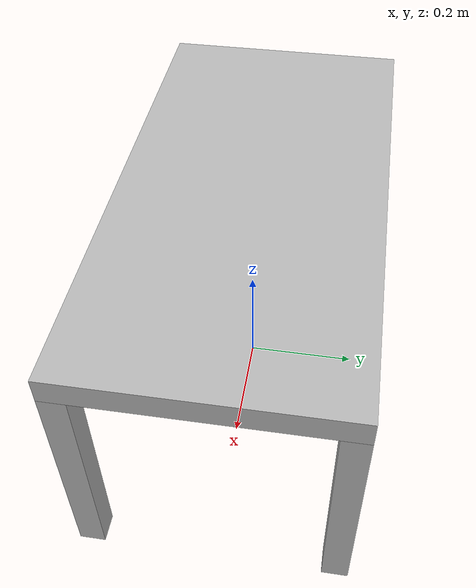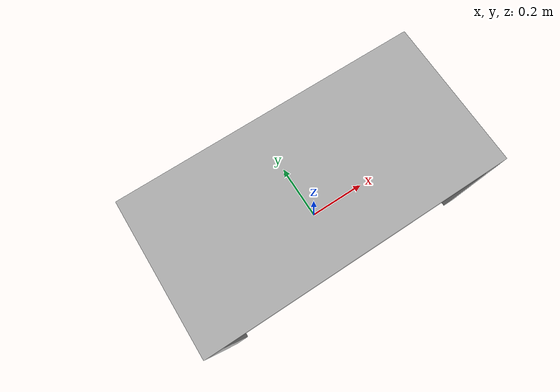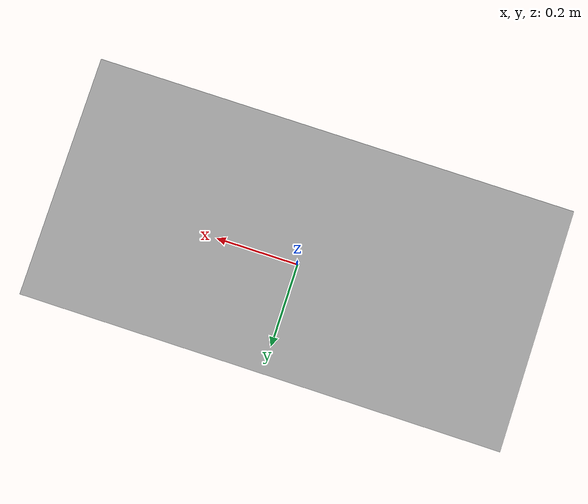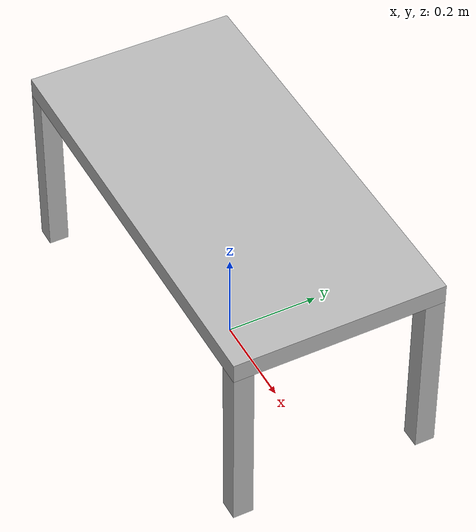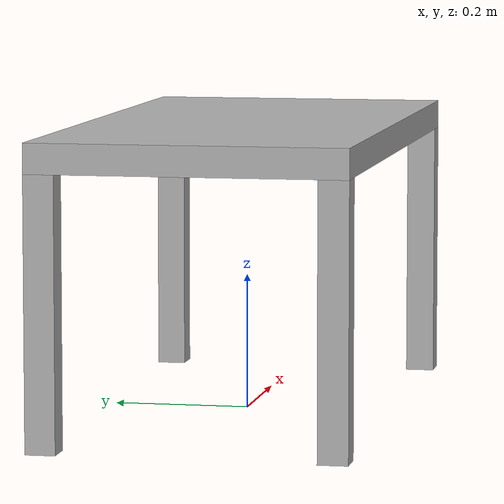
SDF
<?xml version="1.0"?>
<sdf version="1.6">
  <model name="rwc2019/coffee_table">
    <link name="1_link">
      <collision name="1_col">
        <geometry>
          <box>
            <size>0.9 0.45 0.043</size>
          </box>
        </geometry>
      </collision>
      <visual name="1_vis">
        <geometry>
          <box>
            <size>0.9 0.45 0.043</size>
          </box>
        </geometry>
      </visual>
      <pose>0.0 0.0 0.4085 0 0 0</pose>
    </link>
    <link name="2_link">
      <collision name="2_col">
        <geometry>
          <box>
            <size>0.043 0.043 0.387</size>
          </box>
        </geometry>
      </collision>
      <visual name="2_vis">
        <geometry>
          <box>
            <size>0.043 0.043 0.387</size>
          </box>
        </geometry>
      </visual>
      <pose>-0.4285 -0.2035 0.1935 0 0 0</pose>
    </link>
    <link name="3_link">
      <collision name="3_col">
        <geometry>
          <box>
            <size>0.043 0.043 0.387</size>
          </box>
        </geometry>
      </collision>
      <visual name="3_vis">
        <geometry>
          <box>
            <size>0.043 0.043 0.387</size>
          </box>
        </geometry>
      </visual>
      <pose>0.4285 -0.2035 0.1935 0 0 0</pose>
    </link>
    <link name="4_link">
      <collision name="4_col">
        <geometry>
          <box>
            <size>0.043 0.043 0.387</size>
          </box>
        </geometry>
      </collision>
      <visual name="4_vis">
        <geometry>
          <box>
            <size>0.043 0.043 0.387</size>
          </box>
        </geometry>
      </visual>
      <pose>-0.4285 0.2035 0.1935 0 0 0</pose>
    </link>
    <link name="5_link">
      <collision name="5_col">
        <geometry>
          <box>
            <size>0.043 0.043 0.387</size>
          </box>
        </geometry>
      </collision>
      <visual name="5_vis">
        <geometry>
          <box>
            <size>0.043 0.043 0.387</size>
          </box>
        </geometry>
      </visual>
      <pose>0.4285 0.2035 0.1935 0 0 0</pose>
    </link>
    <link name="on_top_of">
      <virtual_volume name="on_top_of_vv">
        <geometry>
          <box>
            <size>0.88 0.39 0.25</size>
          </box>
        </geometry>
        <pose>0.0 0.0 0.575 0 0 0</pose>
      </virtual_volume>
    </link>
    <link name="in_front_of">
      <virtual_volume name="in_front_of_vv">
        <geometry>
          <box>
            <size>0.7 0.25 0.01</size>
          </box>
        </geometry>
        <pose>0.0 -0.725 0.005 0 0 0</pose>
      </virtual_volume>
    </link>
    <static>true</static>
  </model>
</sdf>
